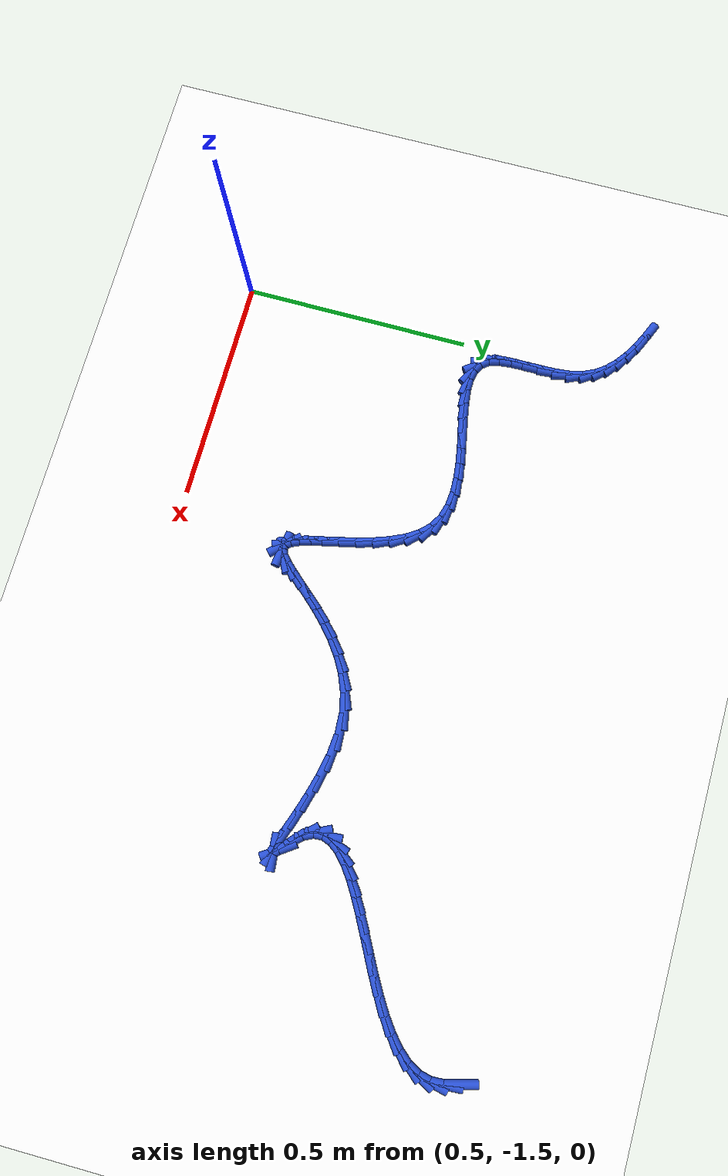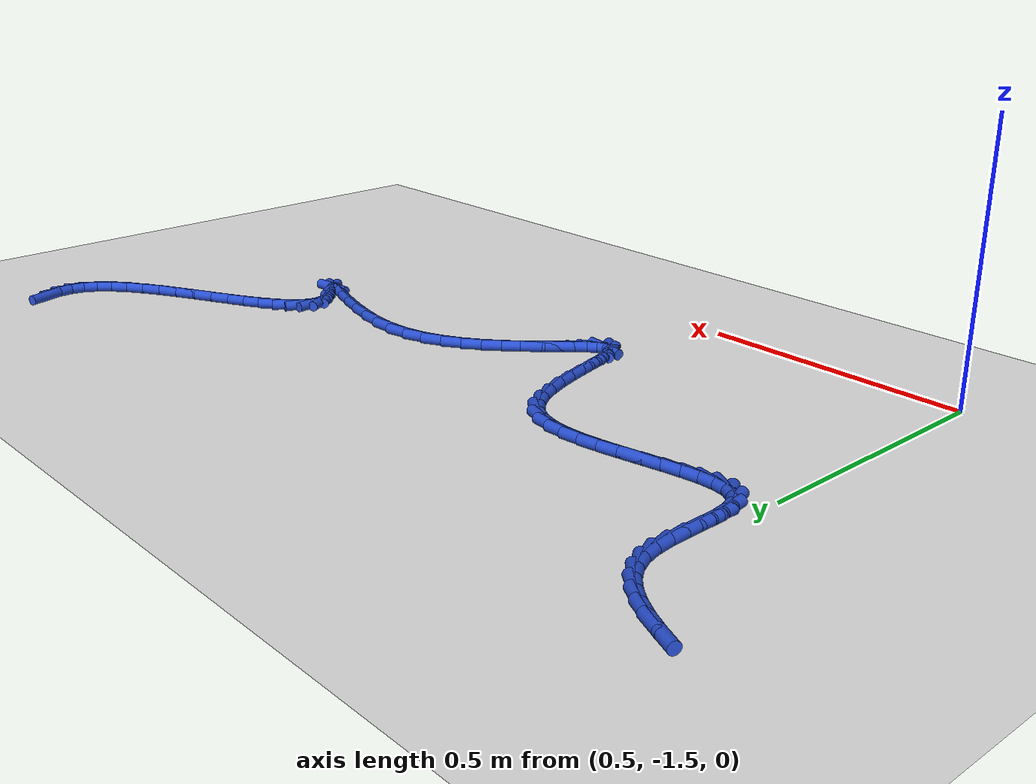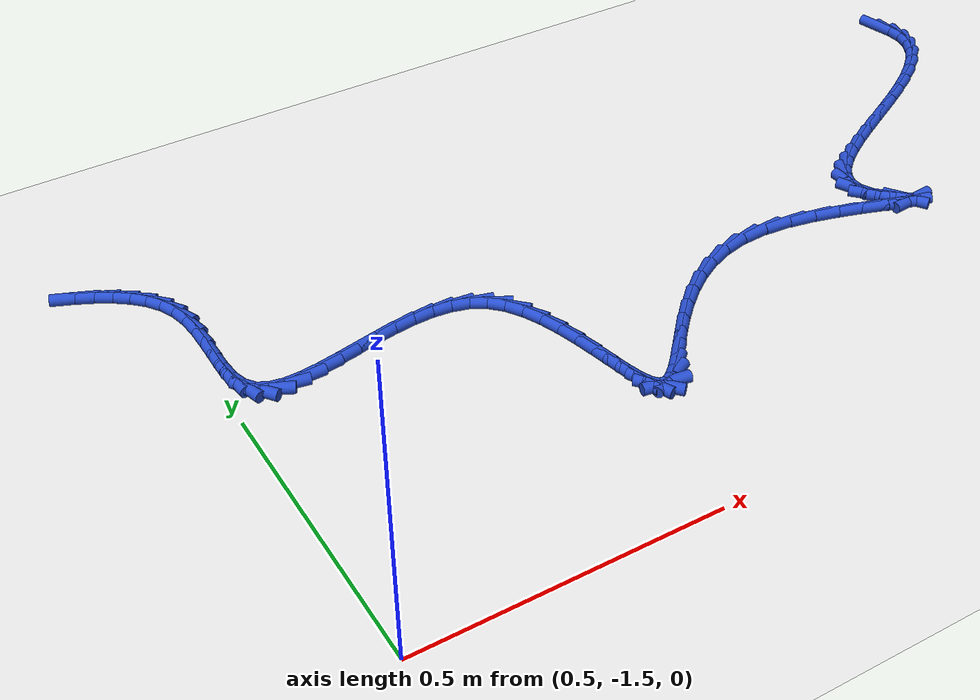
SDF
<sdf version="1.6">
 <world name="default">
  <model name="ground_plane">
   <static>1</static>
   <link name="link">
    <collision name="collision">
     <geometry><plane><normal>0 0 1</normal><size>100 100</size></plane></geometry>
     <surface><friction><ode><mu>100</mu><mu2>50</mu2></ode></friction></surface>
    </collision>
    <visual name="visual">
     <cast_shadows>0</cast_shadows>
     <geometry><plane><normal>0 0 1</normal><size>100 100</size></plane></geometry>
     <material>
      <script><uri>file://media/materials/scripts/gazebo.material</uri><name>Gazebo/WhiteGlow</name></script>
     </material>
    </visual>
   </link>
  </model>
  <model name="line">
   <link name="link_141">
    <pose>2.0365202075726283 -0.6101568703256987 0.01 0 1.57 -1.3154971085269964</pose>
    <collision name="collision">
     <geometry><cylinder><radius>0.01</radius><length>0.08</length></cylinder></geometry>
    </collision>
    <visual name="visual">
     <material>
      <script><name>Gazebo/Blue</name><uri>file://media/materials/scripts/gazebo.material</uri></script>
     </material>
     <geometry><cylinder><radius>0.01</radius><length>0.08</length></cylinder></geometry>
    </visual>
   </link>
   <link name="link_142">
    <pose>2.0439442039422966 -0.6386019169378478 0.01 0 1.57 -1.5188441760817044</pose>
    <collision name="collision">
     <geometry><cylinder><radius>0.01</radius><length>0.08</length></cylinder></geometry>
    </collision>
    <visual name="visual">
     <material>
      <script><name>Gazebo/Blue</name><uri>file://media/materials/scripts/gazebo.material</uri></script>
     </material>
     <geometry><cylinder><radius>0.01</radius><length>0.08</length></cylinder></geometry>
    </visual>
   </link>
   <link name="link_143">
    <pose>2.0453712794253223 -0.6660462349839753 0.01 0 1.57 1.334850323509585</pose>
    <collision name="collision">
     <geometry><cylinder><radius>0.01</radius><length>0.08</length></cylinder></geometry>
    </collision>
    <visual name="visual">
     <material>
      <script><name>Gazebo/Blue</name><uri>file://media/materials/scripts/gazebo.material</uri></script>
     </material>
     <geometry><cylinder><radius>0.01</radius><length>0.08</length></cylinder></geometry>
    </visual>
   </link>
   <link name="link_144">
    <pose>2.039074334436178 -0.6922372173238028 0.01 0 1.57 1.0646054556477154</pose>
    <collision name="collision">
     <geometry><cylinder><radius>0.01</radius><length>0.08</length></cylinder></geometry>
    </collision>
    <visual name="visual">
     <material>
      <script><name>Gazebo/Blue</name><uri>file://media/materials/scripts/gazebo.material</uri></script>
     </material>
     <geometry><cylinder><radius>0.01</radius><length>0.08</length></cylinder></geometry>
    </visual>
   </link>
   <link name="link_145">
    <pose>2.0252477083852085 -0.7171784412068036 0.01 0 1.57 0.8649744407405805</pose>
    <collision name="collision">
     <geometry><cylinder><radius>0.01</radius><length>0.08</length></cylinder></geometry>
    </collision>
    <visual name="visual">
     <material>
      <script><name>Gazebo/Blue</name><uri>file://media/materials/scripts/gazebo.material</uri></script>
     </material>
     <geometry><cylinder><radius>0.01</radius><length>0.08</length></cylinder></geometry>
    </visual>
   </link>
   <link name="link_146">
    <pose>2.004954001127656 -0.7409892485633514 0.01 0 1.57 0.7257990614847771</pose>
    <collision name="collision">
     <geometry><cylinder><radius>0.01</radius><length>0.08</length></cylinder></geometry>
    </collision>
    <visual name="visual">
     <material>
      <script><name>Gazebo/Blue</name><uri>file://media/materials/scripts/gazebo.material</uri></script>
     </material>
     <geometry><cylinder><radius>0.01</radius><length>0.08</length></cylinder></geometry>
    </visual>
   </link>
   <link name="link_147">
    <pose>1.979260061808725 -0.7637895478792787 0.01 0 1.57 0.6303551331826963</pose>
    <collision name="collision">
     <geometry><cylinder><radius>0.01</radius><length>0.08</length></cylinder></geometry>
    </collision>
    <visual name="visual">
     <material>
      <script><name>Gazebo/Blue</name><uri>file://media/materials/scripts/gazebo.material</uri></script>
     </material>
     <geometry><cylinder><radius>0.01</radius><length>0.08</length></cylinder></geometry>
    </visual>
   </link>
   <link name="link_148">
    <pose>1.949232739573619 -0.7856992476404181 0.01 0 1.57 0.5657025924353811</pose>
    <collision name="collision">
     <geometry><cylinder><radius>0.01</radius><length>0.08</length></cylinder></geometry>
    </collision>
    <visual name="visual">
     <material>
      <script><name>Gazebo/Blue</name><uri>file://media/materials/scripts/gazebo.material</uri></script>
     </material>
     <geometry><cylinder><radius>0.01</radius><length>0.08</length></cylinder></geometry>
    </visual>
   </link>
   <link name="link_149">
    <pose>1.9159388835675413 -0.8068382563326031 0.01 0 1.57 0.5235146901072406</pose>
    <collision name="collision">
     <geometry><cylinder><radius>0.01</radius><length>0.08</length></cylinder></geometry>
    </collision>
    <visual name="visual">
     <material>
      <script><name>Gazebo/Blue</name><uri>file://media/materials/scripts/gazebo.material</uri></script>
     </material>
     <geometry><cylinder><radius>0.01</radius><length>0.08</length></cylinder></geometry>
    </visual>
   </link>
   <link name="link_150">
    <pose>1.8804453429356947 -0.827326482441666 0.01 0 1.57 0.49891164776198965</pose>
    <collision name="collision">
     <geometry><cylinder><radius>0.01</radius><length>0.08</length></cylinder></geometry>
    </collision>
    <visual name="visual">
     <material>
      <script><name>Gazebo/Blue</name><uri>file://media/materials/scripts/gazebo.material</uri></script>
     </material>
     <geometry><cylinder><radius>0.01</radius><length>0.08</length></cylinder></geometry>
    </visual>
   </link>
   <link name="link_151">
    <pose>1.843818966823284 -0.8472838344534401 0.01 0 1.57 0.48947186409399607</pose>
    <collision name="collision">
     <geometry><cylinder><radius>0.01</radius><length>0.08</length></cylinder></geometry>
    </collision>
    <visual name="visual">
     <material>
      <script><name>Gazebo/Blue</name><uri>file://media/materials/scripts/gazebo.material</uri></script>
     </material>
     <geometry><cylinder><radius>0.01</radius><length>0.08</length></cylinder></geometry>
    </visual>
   </link>
   <link name="link_152">
    <pose>1.807126604375512 -0.8668302208537584 0.01 0 1.57 0.4947409707133204</pose>
    <collision name="collision">
     <geometry><cylinder><radius>0.01</radius><length>0.08</length></cylinder></geometry>
    </collision>
    <visual name="visual">
     <material>
      <script><name>Gazebo/Blue</name><uri>file://media/materials/scripts/gazebo.material</uri></script>
     </material>
     <geometry><cylinder><radius>0.01</radius><length>0.08</length></cylinder></geometry>
    </visual>
   </link>
   <link name="link_153">
    <pose>1.7714351047375834 -0.8860855501284539 0.01 0 1.57 0.5162398764177215</pose>
    <collision name="collision">
     <geometry><cylinder><radius>0.01</radius><length>0.08</length></cylinder></geometry>
    </collision>
    <visual name="visual">
     <material>
      <script><name>Gazebo/Blue</name><uri>file://media/materials/scripts/gazebo.material</uri></script>
     </material>
     <geometry><cylinder><radius>0.01</radius><length>0.08</length></cylinder></geometry>
    </visual>
   </link>
   <link name="link_154">
    <pose>1.7378113170547005 -0.9051697307633596 0.01 0 1.57 0.5580607703169488</pose>
    <collision name="collision">
     <geometry><cylinder><radius>0.01</radius><length>0.08</length></cylinder></geometry>
    </collision>
    <visual name="visual">
     <material>
      <script><name>Gazebo/Blue</name><uri>file://media/materials/scripts/gazebo.material</uri></script>
     </material>
     <geometry><cylinder><radius>0.01</radius><length>0.08</length></cylinder></geometry>
    </visual>
   </link>
   <link name="link_155">
    <pose>1.7073220904720678 -0.9242026712443082 0.01 0 1.57 0.6283780905096861</pose>
    <collision name="collision">
     <geometry><cylinder><radius>0.01</radius><length>0.08</length></cylinder></geometry>
    </collision>
    <visual name="visual">
     <material>
      <script><name>Gazebo/Blue</name><uri>file://media/materials/scripts/gazebo.material</uri></script>
     </material>
     <geometry><cylinder><radius>0.01</radius><length>0.08</length></cylinder></geometry>
    </visual>
   </link>
   <link name="link_156">
    <pose>1.6810342741348885 -0.9433042800571332 0.01 0 1.57 0.7425223880639837</pose>
    <collision name="collision">
     <geometry><cylinder><radius>0.01</radius><length>0.08</length></cylinder></geometry>
    </collision>
    <visual name="visual">
     <material>
      <script><name>Gazebo/Blue</name><uri>file://media/materials/scripts/gazebo.material</uri></script>
     </material>
     <geometry><cylinder><radius>0.01</radius><length>0.08</length></cylinder></geometry>
    </visual>
   </link>
   <link name="link_157">
    <pose>1.6600147171883668 -0.962594465687667 0.01 0 1.57 0.9277706781269031</pose>
    <collision name="collision">
     <geometry><cylinder><radius>0.01</radius><length>0.08</length></cylinder></geometry>
    </collision>
    <visual name="visual">
     <material>
      <script><name>Gazebo/Blue</name><uri>file://media/materials/scripts/gazebo.material</uri></script>
     </material>
     <geometry><cylinder><radius>0.01</radius><length>0.08</length></cylinder></geometry>
    </visual>
   </link>
   <link name="link_158">
    <pose>1.6453302687777054 -0.9821931366217429 0.01 0 1.57 1.2220287745851628</pose>
    <collision name="collision">
     <geometry><cylinder><radius>0.01</radius><length>0.08</length></cylinder></geometry>
    </collision>
    <visual name="visual">
     <material>
      <script><name>Gazebo/Blue</name><uri>file://media/materials/scripts/gazebo.material</uri></script>
     </material>
     <geometry><cylinder><radius>0.01</radius><length>0.08</length></cylinder></geometry>
    </visual>
   </link>
   <link name="link_159">
    <pose>1.6380477780481082 -1.002220201345194 0.01 0 1.57 -1.513202985241832</pose>
    <collision name="collision">
     <geometry><cylinder><radius>0.01</radius><length>0.08</length></cylinder></geometry>
    </collision>
    <visual name="visual">
     <material>
      <script><name>Gazebo/Blue</name><uri>file://media/materials/scripts/gazebo.material</uri></script>
     </material>
     <geometry><cylinder><radius>0.01</radius><length>0.08</length></cylinder></geometry>
    </visual>
   </link>
   <link name="link_160">
    <pose>1.6392340941447787 -1.0227955683438528 0.01 0 1.57 -1.1033830963939646</pose>
    <collision name="collision">
     <geometry><cylinder><radius>0.01</radius><length>0.08</length></cylinder></geometry>
    </collision>
    <visual name="visual">
     <material>
      <script><name>Gazebo/Blue</name><uri>file://media/materials/scripts/gazebo.material</uri></script>
     </material>
     <geometry><cylinder><radius>0.01</radius><length>0.08</length></cylinder></geometry>
    </visual>
   </link>
   <link name="link_161">
    <pose>1.6499560662129213 -1.0440391461035528 0.01 0 1.57 -0.8106588205118175</pose>
    <collision name="collision">
     <geometry><cylinder><radius>0.01</radius><length>0.08</length></cylinder></geometry>
    </collision>
    <visual name="visual">
     <material>
      <script><name>Gazebo/Blue</name><uri>file://media/materials/scripts/gazebo.material</uri></script>
     </material>
     <geometry><cylinder><radius>0.01</radius><length>0.08</length></cylinder></geometry>
    </visual>
   </link>
   <link name="link_162">
    <pose>1.6706747706532046 -1.0658319475888849 0.01 0 1.57 -0.7256181644002537</pose>
    <collision name="collision">
     <geometry><cylinder><radius>0.01</radius><length>0.08</length></cylinder></geometry>
    </collision>
    <visual name="visual">
     <material>
      <script><name>Gazebo/Blue</name><uri>file://media/materials/scripts/gazebo.material</uri></script>
     </material>
     <geometry><cylinder><radius>0.01</radius><length>0.08</length></cylinder></geometry>
    </visual>
   </link>
   <link name="link_163">
    <pose>1.69083086515302 -1.0837115554083416 0.01 0 1.57 -0.9590964789829547</pose>
    <collision name="collision">
     <geometry><cylinder><radius>0.01</radius><length>0.08</length></cylinder></geometry>
    </collision>
    <visual name="visual">
     <material>
      <script><name>Gazebo/Blue</name><uri>file://media/materials/scripts/gazebo.material</uri></script>
     </material>
     <geometry><cylinder><radius>0.01</radius><length>0.08</length></cylinder></geometry>
    </visual>
   </link>
   <link name="link_164">
    <pose>1.6969852930305747 -1.092485394822723 0.01 0 1.57 0.09613675140793618</pose>
    <collision name="collision">
     <geometry><cylinder><radius>0.01</radius><length>0.08</length></cylinder></geometry>
    </collision>
    <visual name="visual">
     <material>
      <script><name>Gazebo/Blue</name><uri>file://media/materials/scripts/gazebo.material</uri></script>
     </material>
     <geometry><cylinder><radius>0.01</radius><length>0.08</length></cylinder></geometry>
    </visual>
   </link>
   <link name="link_165">
    <pose>1.68942811507707 -1.093214163906986 0.01 0 1.57 -0.2767816808293668</pose>
    <collision name="collision">
     <geometry><cylinder><radius>0.01</radius><length>0.08</length></cylinder></geometry>
    </collision>
    <visual name="visual">
     <material>
      <script><name>Gazebo/Blue</name><uri>file://media/materials/scripts/gazebo.material</uri></script>
     </material>
     <geometry><cylinder><radius>0.01</radius><length>0.08</length></cylinder></geometry>
    </visual>
   </link>
   <link name="link_166">
    <pose>1.6701913782483153 -1.0877495244135522 0.01 0 1.57 -0.32729595699986075</pose>
    <collision name="collision">
     <geometry><cylinder><radius>0.01</radius><length>0.08</length></cylinder></geometry>
    </collision>
    <visual name="visual">
     <material>
      <script><name>Gazebo/Blue</name><uri>file://media/materials/scripts/gazebo.material</uri></script>
     </material>
     <geometry><cylinder><radius>0.01</radius><length>0.08</length></cylinder></geometry>
    </visual>
   </link>
   <link name="link_167">
    <pose>1.6413071295001176 -1.0779431380948439 0.01 0 1.57 -0.3249501699238986</pose>
    <collision name="collision">
     <geometry><cylinder><radius>0.01</radius><length>0.08</length></cylinder></geometry>
    </collision>
    <visual name="visual">
     <material>
      <script><name>Gazebo/Blue</name><uri>file://media/materials/scripts/gazebo.material</uri></script>
     </material>
     <geometry><cylinder><radius>0.01</radius><length>0.08</length></cylinder></geometry>
    </visual>
   </link>
   <link name="link_168">
    <pose>1.6048074157882861 -1.0656466667032827 0.01 0 1.57 -0.29820018483353095</pose>
    <collision name="collision">
     <geometry><cylinder><radius>0.01</radius><length>0.08</length></cylinder></geometry>
    </collision>
    <visual name="visual">
     <material>
      <script><name>Gazebo/Blue</name><uri>file://media/materials/scripts/gazebo.material</uri></script>
     </material>
     <geometry><cylinder><radius>0.01</radius><length>0.08</length></cylinder></geometry>
    </visual>
   </link>
   <link name="link_169">
    <pose>1.5627242840686286 -1.052711771991291 0.01 0 1.57 -0.2514241853783158</pose>
    <collision name="collision">
     <geometry><cylinder><radius>0.01</radius><length>0.08</length></cylinder></geometry>
    </collision>
    <visual name="visual">
     <material>
      <script><name>Gazebo/Blue</name><uri>file://media/materials/scripts/gazebo.material</uri></script>
     </material>
     <geometry><cylinder><radius>0.01</radius><length>0.08</length></cylinder></geometry>
    </visual>
   </link>
   <link name="link_170">
    <pose>1.5170897812969537 -1.0409901157112909 0.01 0 1.57 -0.1815636729861949</pose>
    <collision name="collision">
     <geometry><cylinder><radius>0.01</radius><length>0.08</length></cylinder></geometry>
    </collision>
    <visual name="visual">
     <material>
      <script><name>Gazebo/Blue</name><uri>file://media/materials/scripts/gazebo.material</uri></script>
     </material>
     <geometry><cylinder><radius>0.01</radius><length>0.08</length></cylinder></geometry>
    </visual>
   </link>
   <link name="link_171">
    <pose>1.469935954429069 -1.0323333596157038 0.01 0 1.57 -0.08001971254131335</pose>
    <collision name="collision">
     <geometry><cylinder><radius>0.01</radius><length>0.08</length></cylinder></geometry>
    </collision>
    <visual name="visual">
     <material>
      <script><name>Gazebo/Blue</name><uri>file://media/materials/scripts/gazebo.material</uri></script>
     </material>
     <geometry><cylinder><radius>0.01</radius><length>0.08</length></cylinder></geometry>
    </visual>
   </link>
   <link name="link_172">
    <pose>1.4232948504207834 -1.0285931654569518 0.01 0 1.57 0.06611495928552875</pose>
    <collision name="collision">
     <geometry><cylinder><radius>0.01</radius><length>0.08</length></cylinder></geometry>
    </collision>
    <visual name="visual">
     <material>
      <script><name>Gazebo/Blue</name><uri>file://media/materials/scripts/gazebo.material</uri></script>
     </material>
     <geometry><cylinder><radius>0.01</radius><length>0.08</length></cylinder></geometry>
    </visual>
   </link>
   <link name="link_173">
    <pose>1.3791253040653408 -1.0315176956818468 0.01 0 1.57 0.23330518874298573</pose>
    <collision name="collision">
     <geometry><cylinder><radius>0.01</radius><length>0.08</length></cylinder></geometry>
    </collision>
    <visual name="visual">
     <material>
      <script><name>Gazebo/Blue</name><uri>file://media/materials/scripts/gazebo.material</uri></script>
     </material>
     <geometry><cylinder><radius>0.01</radius><length>0.08</length></cylinder></geometry>
    </visual>
   </link>
   <link name="link_174">
    <pose>1.3382391277229824 -1.0412335785388094 0.01 0 1.57 0.3865921880361873</pose>
    <collision name="collision">
     <geometry><cylinder><radius>0.01</radius><length>0.08</length></cylinder></geometry>
    </collision>
    <visual name="visual">
     <material>
      <script><name>Gazebo/Blue</name><uri>file://media/materials/scripts/gazebo.material</uri></script>
     </material>
     <geometry><cylinder><radius>0.01</radius><length>0.08</length></cylinder></geometry>
    </visual>
   </link>
   <link name="link_175">
    <pose>1.3005380218652145 -1.0565808261565726 0.01 0 1.57 0.5189134378827458</pose>
    <collision name="collision">
     <geometry><cylinder><radius>0.01</radius><length>0.08</length></cylinder></geometry>
    </collision>
    <visual name="visual">
     <material>
      <script><name>Gazebo/Blue</name><uri>file://media/materials/scripts/gazebo.material</uri></script>
     </material>
     <geometry><cylinder><radius>0.01</radius><length>0.08</length></cylinder></geometry>
    </visual>
   </link>
   <link name="link_176">
    <pose>1.2658986533644012 -1.076364060913894 0.01 0 1.57 0.6281480856099433</pose>
    <collision name="collision">
     <geometry><cylinder><radius>0.01</radius><length>0.08</length></cylinder></geometry>
    </collision>
    <visual name="visual">
     <material>
      <script><name>Gazebo/Blue</name><uri>file://media/materials/scripts/gazebo.material</uri></script>
     </material>
     <geometry><cylinder><radius>0.01</radius><length>0.08</length></cylinder></geometry>
    </visual>
   </link>
   <link name="link_177">
    <pose>1.2341976890929036 -1.0993879051895332 0.01 0 1.57 0.714775025030998</pose>
    <collision name="collision">
     <geometry><cylinder><radius>0.01</radius><length>0.08</length></cylinder></geometry>
    </collision>
    <visual name="visual">
     <material>
      <script><name>Gazebo/Blue</name><uri>file://media/materials/scripts/gazebo.material</uri></script>
     </material>
     <geometry><cylinder><radius>0.01</radius><length>0.08</length></cylinder></geometry>
    </visual>
   </link>
   <link name="link_178">
    <pose>1.2053117959230855 -1.1244569813622483 0.01 0 1.57 0.7801169142639108</pose>
    <collision name="collision">
     <geometry><cylinder><radius>0.01</radius><length>0.08</length></cylinder></geometry>
    </collision>
    <visual name="visual">
     <material>
      <script><name>Gazebo/Blue</name><uri>file://media/materials/scripts/gazebo.material</uri></script>
     </material>
     <geometry><cylinder><radius>0.01</radius><length>0.08</length></cylinder></geometry>
    </visual>
   </link>
   <link name="link_179">
    <pose>1.1791176407273094 -1.1503759118107957 0.01 0 1.57 0.8249647004929578</pose>
    <collision name="collision">
     <geometry><cylinder><radius>0.01</radius><length>0.08</length></cylinder></geometry>
    </collision>
    <visual name="visual">
     <material>
      <script><name>Gazebo/Blue</name><uri>file://media/materials/scripts/gazebo.material</uri></script>
     </material>
     <geometry><cylinder><radius>0.01</radius><length>0.08</length></cylinder></geometry>
    </visual>
   </link>
   <link name="link_180">
    <pose>1.1554918903779385 -1.1759493189139347 0.01 0 1.57 0.8483898449364207</pose>
    <collision name="collision">
     <geometry><cylinder><radius>0.01</radius><length>0.08</length></cylinder></geometry>
    </collision>
    <visual name="visual">
     <material>
      <script><name>Gazebo/Blue</name><uri>file://media/materials/scripts/gazebo.material</uri></script>
     </material>
     <geometry><cylinder><radius>0.01</radius><length>0.08</length></cylinder></geometry>
    </visual>
   </link>
   <link name="link_181">
    <pose>1.1343112117473364 -1.1999818250504233 0.01 0 1.57 0.8460205238312934</pose>
    <collision name="collision">
     <geometry><cylinder><radius>0.01</radius><length>0.08</length></cylinder></geometry>
    </collision>
    <visual name="visual">
     <material>
      <script><name>Gazebo/Blue</name><uri>file://media/materials/scripts/gazebo.material</uri></script>
     </material>
     <geometry><cylinder><radius>0.01</radius><length>0.08</length></cylinder></geometry>
    </visual>
   </link>
   <link name="link_182">
    <pose>1.1154522717078645 -1.2212780525990192 0.01 0 1.57 0.8060868958363215</pose>
    <collision name="collision">
     <geometry><cylinder><radius>0.01</radius><length>0.08</length></cylinder></geometry>
    </collision>
    <visual name="visual">
     <material>
      <script><name>Gazebo/Blue</name><uri>file://media/materials/scripts/gazebo.material</uri></script>
     </material>
     <geometry><cylinder><radius>0.01</radius><length>0.08</length></cylinder></geometry>
    </visual>
   </link>
   <link name="link_183">
    <pose>1.098791737131887 -1.2386426239384805 0.01 0 1.57 0.6980866988562023</pose>
    <collision name="collision">
     <geometry><cylinder><radius>0.01</radius><length>0.08</length></cylinder></geometry>
    </collision>
    <visual name="visual">
     <material>
      <script><name>Gazebo/Blue</name><uri>file://media/materials/scripts/gazebo.material</uri></script>
     </material>
     <geometry><cylinder><radius>0.01</radius><length>0.08</length></cylinder></geometry>
    </visual>
   </link>
   <link name="link_184">
    <pose>1.084206274891766 -1.2508801614475653 0.01 0 1.57 0.4378866431995699</pose>
    <collision name="collision">
     <geometry><cylinder><radius>0.01</radius><length>0.08</length></cylinder></geometry>
    </collision>
    <visual name="visual">
     <material>
      <script><name>Gazebo/Blue</name><uri>file://media/materials/scripts/gazebo.material</uri></script>
     </material>
     <geometry><cylinder><radius>0.01</radius><length>0.08</length></cylinder></geometry>
    </visual>
   </link>
   <link name="link_185">
    <pose>1.0715725518598647 -1.2567952875050317 0.01 0 1.57 -0.14724817895022613</pose>
    <collision name="collision">
     <geometry><cylinder><radius>0.01</radius><length>0.08</length></cylinder></geometry>
    </collision>
    <visual name="visual">
     <material>
      <script><name>Gazebo/Blue</name><uri>file://media/materials/scripts/gazebo.material</uri></script>
     </material>
     <geometry><cylinder><radius>0.01</radius><length>0.08</length></cylinder></geometry>
    </visual>
   </link>
   <link name="link_186">
    <pose>1.0607672349085462 -1.2551926244896379 0.01 0 1.57 -0.8377163409879248</pose>
    <collision name="collision">
     <geometry><cylinder><radius>0.01</radius><length>0.08</length></cylinder></geometry>
    </collision>
    <visual name="visual">
     <material>
      <script><name>Gazebo/Blue</name><uri>file://media/materials/scripts/gazebo.material</uri></script>
     </material>
     <geometry><cylinder><radius>0.01</radius><length>0.08</length></cylinder></geometry>
    </visual>
   </link>
   <link name="link_187">
    <pose>1.0516385557198131 -1.2450550493009434 0.01 0 1.57 -1.1599930200410624</pose>
    <collision name="collision">
     <geometry><cylinder><radius>0.01</radius><length>0.08</length></cylinder></geometry>
    </collision>
    <visual name="visual">
     <material>
      <script><name>Gazebo/Blue</name><uri>file://media/materials/scripts/gazebo.material</uri></script>
     </material>
     <geometry><cylinder><radius>0.01</radius><length>0.08</length></cylinder></geometry>
    </visual>
   </link>
   <link name="link_188">
    <pose>1.0437740052809086 -1.2269999701009708 0.01 0 1.57 -1.2864794270924942</pose>
    <collision name="collision">
     <geometry><cylinder><radius>0.01</radius><length>0.08</length></cylinder></geometry>
    </collision>
    <visual name="visual">
     <material>
      <script><name>Gazebo/Blue</name><uri>file://media/materials/scripts/gazebo.material</uri></script>
     </material>
     <geometry><cylinder><radius>0.01</radius><length>0.08</length></cylinder></geometry>
    </visual>
   </link>
   <link name="link_189">
    <pose>1.0366209898193517 -1.2025229583908992 0.01 0 1.57 -1.337161963090513</pose>
    <collision name="collision">
     <geometry><cylinder><radius>0.01</radius><length>0.08</length></cylinder></geometry>
    </collision>
    <visual name="visual">
     <material>
      <script><name>Gazebo/Blue</name><uri>file://media/materials/scripts/gazebo.material</uri></script>
     </material>
     <geometry><cylinder><radius>0.01</radius><length>0.08</length></cylinder></geometry>
    </visual>
   </link>
   <link name="link_190">
    <pose>1.029625572029143 -1.1731280080148034 0.01 0 1.57 -1.3491988723345656</pose>
    <collision name="collision">
     <geometry><cylinder><radius>0.01</radius><length>0.08</length></cylinder></geometry>
    </collision>
    <visual name="visual">
     <material>
      <script><name>Gazebo/Blue</name><uri>file://media/materials/scripts/gazebo.material</uri></script>
     </material>
     <geometry><cylinder><radius>0.01</radius><length>0.08</length></cylinder></geometry>
    </visual>
   </link>
   <link name="link_191">
    <pose>1.0222338146042835 -1.1403191128167594 0.01 0 1.57 -1.3349923307949656</pose>
    <collision name="collision">
     <geometry><cylinder><radius>0.01</radius><length>0.08</length></cylinder></geometry>
    </collision>
    <visual name="visual">
     <material>
      <script><name>Gazebo/Blue</name><uri>file://media/materials/scripts/gazebo.material</uri></script>
     </material>
     <geometry><cylinder><radius>0.01</radius><length>0.08</length></cylinder></geometry>
    </visual>
   </link>
   <link name="link_192">
    <pose>1.0138917802387732 -1.1056002666408418 0.01 0 1.57 -1.2974892297788525</pose>
    <collision name="collision">
     <geometry><cylinder><radius>0.01</radius><length>0.08</length></cylinder></geometry>
    </collision>
    <visual name="visual">
     <material>
      <script><name>Gazebo/Blue</name><uri>file://media/materials/scripts/gazebo.material</uri></script>
     </material>
     <geometry><cylinder><radius>0.01</radius><length>0.08</length></cylinder></geometry>
    </visual>
   </link>
   <link name="link_193">
    <pose>1.004045531626613 -1.0704754633311255 0.01 0 1.57 -1.2342515863513333</pose>
    <collision name="collision">
     <geometry><cylinder><radius>0.01</radius><length>0.08</length></cylinder></geometry>
    </collision>
    <visual name="visual">
     <material>
      <script><name>Gazebo/Blue</name><uri>file://media/materials/scripts/gazebo.material</uri></script>
     </material>
     <geometry><cylinder><radius>0.01</radius><length>0.08</length></cylinder></geometry>
    </visual>
   </link>
   <link name="link_194">
    <pose>0.9921411314618032 -1.0364486967316862 0.01 0 1.57 -1.1380537365277816</pose>
    <collision name="collision">
     <geometry><cylinder><radius>0.01</radius><length>0.08</length></cylinder></geometry>
    </collision>
    <visual name="visual">
     <material>
      <script><name>Gazebo/Blue</name><uri>file://media/materials/scripts/gazebo.material</uri></script>
     </material>
     <geometry><cylinder><radius>0.01</radius><length>0.08</length></cylinder></geometry>
    </visual>
   </link>
   <link name="link_195">
    <pose>0.9776246424383443 -1.0050239606865985 0.01 0 1.57 -0.996344393427405</pose>
    <collision name="collision">
     <geometry><cylinder><radius>0.01</radius><length>0.08</length></cylinder></geometry>
    </collision>
    <visual name="visual">
     <material>
      <script><name>Gazebo/Blue</name><uri>file://media/materials/scripts/gazebo.material</uri></script>
     </material>
     <geometry><cylinder><radius>0.01</radius><length>0.08</length></cylinder></geometry>
    </visual>
   </link>
   <link name="link_196">
    <pose>0.9599421272502381 -0.9777052490399389 0.01 0 1.57 -0.7925009532605019</pose>
    <collision name="collision">
     <geometry><cylinder><radius>0.01</radius><length>0.08</length></cylinder></geometry>
    </collision>
    <visual name="visual">
     <material>
      <script><name>Gazebo/Blue</name><uri>file://media/materials/scripts/gazebo.material</uri></script>
     </material>
     <geometry><cylinder><radius>0.01</radius><length>0.08</length></cylinder></geometry>
    </visual>
   </link>
   <link name="link_197">
    <pose>0.9385396485914832 -0.955996555635781 0.01 0 1.57 -0.5271213506755899</pose>
    <collision name="collision">
     <geometry><cylinder><radius>0.01</radius><length>0.08</length></cylinder></geometry>
    </collision>
    <visual name="visual">
     <material>
      <script><name>Gazebo/Blue</name><uri>file://media/materials/scripts/gazebo.material</uri></script>
     </material>
     <geometry><cylinder><radius>0.01</radius><length>0.08</length></cylinder></geometry>
    </visual>
   </link>
   <link name="link_198">
    <pose>0.9130022722747739 -0.9411323565137719 0.01 0 1.57 -0.2818856975400653</pose>
    <collision name="collision">
     <geometry><cylinder><radius>0.01</radius><length>0.08</length></cylinder></geometry>
    </collision>
    <visual name="visual">
     <material>
      <script><name>Gazebo/Blue</name><uri>file://media/materials/scripts/gazebo.material</uri></script>
     </material>
     <geometry><cylinder><radius>0.01</radius><length>0.08</length></cylinder></geometry>
    </visual>
   </link>
   <link name="link_199">
    <pose>0.8837801804214874 -0.9326697247150854 0.01 0 1.57 -0.09769030096837417</pose>
    <collision name="collision">
     <geometry><cylinder><radius>0.01</radius><length>0.08</length></cylinder></geometry>
    </collision>
    <visual name="visual">
     <material>
      <script><name>Gazebo/Blue</name><uri>file://media/materials/scripts/gazebo.material</uri></script>
     </material>
     <geometry><cylinder><radius>0.01</radius><length>0.08</length></cylinder></geometry>
    </visual>
   </link>
   <link name="link_200">
    <pose>0.8516558342200455 -0.9295214662640833 0.01 0 1.57 0.03145805331114626</pose>
    <collision name="collision">
     <geometry><cylinder><radius>0.01</radius><length>0.08</length></cylinder></geometry>
    </collision>
    <visual name="visual">
     <material>
      <script><name>Gazebo/Blue</name><uri>file://media/materials/scripts/gazebo.material</uri></script>
     </material>
     <geometry><cylinder><radius>0.01</radius><length>0.08</length></cylinder></geometry>
    </visual>
   </link>
   <link name="link_201">
    <pose>0.8174123824023956 -0.9305990540839515 0.01 0 1.57 0.11791523086610088</pose>
    <collision name="collision">
     <geometry><cylinder><radius>0.01</radius><length>0.08</length></cylinder></geometry>
    </collision>
    <visual name="visual">
     <material>
      <script><name>Gazebo/Blue</name><uri>file://media/materials/scripts/gazebo.material</uri></script>
     </material>
     <geometry><cylinder><radius>0.01</radius><length>0.08</length></cylinder></geometry>
    </visual>
   </link>
   <link name="link_202">
    <pose>0.781832973700484 -0.9348139610978736 0.01 0 1.57 0.1716490674855089</pose>
    <collision name="collision">
     <geometry><cylinder><radius>0.01</radius><length>0.08</length></cylinder></geometry>
    </collision>
    <visual name="visual">
     <material>
      <script><name>Gazebo/Blue</name><uri>file://media/materials/scripts/gazebo.material</uri></script>
     </material>
     <geometry><cylinder><radius>0.01</radius><length>0.08</length></cylinder></geometry>
    </visual>
   </link>
   <link name="link_203">
    <pose>0.745700756846258 -0.9410776602290345 0.01 0 1.57 0.19856270267447498</pose>
    <collision name="collision">
     <geometry><cylinder><radius>0.01</radius><length>0.08</length></cylinder></geometry>
    </collision>
    <visual name="visual">
     <material>
      <script><name>Gazebo/Blue</name><uri>file://media/materials/scripts/gazebo.material</uri></script>
     </material>
     <geometry><cylinder><radius>0.01</radius><length>0.08</length></cylinder></geometry>
    </visual>
   </link>
   <link name="link_204">
    <pose>0.7097988805716647 -0.9483016244006187 0.01 0 1.57 0.2006462446348905</pose>
    <collision name="collision">
     <geometry><cylinder><radius>0.01</radius><length>0.08</length></cylinder></geometry>
    </collision>
    <visual name="visual">
     <material>
      <script><name>Gazebo/Blue</name><uri>file://media/materials/scripts/gazebo.material</uri></script>
     </material>
     <geometry><cylinder><radius>0.01</radius><length>0.08</length></cylinder></geometry>
    </visual>
   </link>
   <link name="link_205">
    <pose>0.6749104936086507 -0.9553973265358106 0.01 0 1.57 0.1758205588415721</pose>
    <collision name="collision">
     <geometry><cylinder><radius>0.01</radius><length>0.08</length></cylinder></geometry>
    </collision>
    <visual name="visual">
     <material>
      <script><name>Gazebo/Blue</name><uri>file://media/materials/scripts/gazebo.material</uri></script>
     </material>
     <geometry><cylinder><radius>0.01</radius><length>0.08</length></cylinder></geometry>
    </visual>
   </link>
   <link name="link_206">
    <pose>0.6418187446891633 -0.9612762395577947 0.01 0 1.57 0.11659000759840983</pose>
    <collision name="collision">
     <geometry><cylinder><radius>0.01</radius><length>0.08</length></cylinder></geometry>
    </collision>
    <visual name="visual">
     <material>
      <script><name>Gazebo/Blue</name><uri>file://media/materials/scripts/gazebo.material</uri></script>
     </material>
     <geometry><cylinder><radius>0.01</radius><length>0.08</length></cylinder></geometry>
    </visual>
   </link>
   <link name="link_207">
    <pose>0.6113067825451495 -0.9648498363897556 0.01 0 1.57 0.006620898087576034</pose>
    <collision name="collision">
     <geometry><cylinder><radius>0.01</radius><length>0.08</length></cylinder></geometry>
    </collision>
    <visual name="visual">
     <material>
      <script><name>Gazebo/Blue</name><uri>file://media/materials/scripts/gazebo.material</uri></script>
     </material>
     <geometry><cylinder><radius>0.01</radius><length>0.08</length></cylinder></geometry>
    </visual>
   </link>
   <link name="link_208">
    <pose>0.5841577559085557 -0.9650295899548776 0.01 0 1.57 -0.18490968627495757</pose>
    <collision name="collision">
     <geometry><cylinder><radius>0.01</radius><length>0.08</length></cylinder></geometry>
    </collision>
    <visual name="visual">
     <material>
      <script><name>Gazebo/Blue</name><uri>file://media/materials/scripts/gazebo.material</uri></script>
     </material>
     <geometry><cylinder><radius>0.01</radius><length>0.08</length></cylinder></geometry>
    </visual>
   </link>
   <link name="link_209">
    <pose>0.5611548135113301 -0.960726973176346 0.01 0 1.57 -0.49999155172265675</pose>
    <collision name="collision">
     <geometry><cylinder><radius>0.01</radius><length>0.08</length></cylinder></geometry>
    </collision>
    <visual name="visual">
     <material>
      <script><name>Gazebo/Blue</name><uri>file://media/materials/scripts/gazebo.material</uri></script>
     </material>
     <geometry><cylinder><radius>0.01</radius><length>0.08</length></cylinder></geometry>
    </visual>
   </link>
   <link name="link_210">
    <pose>0.5430811040854181 -0.9508534589773446 0.01 0 1.57 -0.9264508908928696</pose>
    <collision name="collision">
     <geometry><cylinder><radius>0.01</radius><length>0.08</length></cylinder></geometry>
    </collision>
    <visual name="visual">
     <material>
      <script><name>Gazebo/Blue</name><uri>file://media/materials/scripts/gazebo.material</uri></script>
     </material>
     <geometry><cylinder><radius>0.01</radius><length>0.08</length></cylinder></geometry>
    </visual>
   </link>
   <link name="link_211">
    <pose>0.5306872305078727 -0.9343573295366624 0.01 0 1.57 -1.2757337856568287</pose>
    <collision name="collision">
     <geometry><cylinder><radius>0.01</radius><length>0.08</length></cylinder></geometry>
    </collision>
    <visual name="visual">
     <material>
      <script><name>Gazebo/Blue</name><uri>file://media/materials/scripts/gazebo.material</uri></script>
     </material>
     <geometry><cylinder><radius>0.01</radius><length>0.08</length></cylinder></geometry>
    </visual>
   </link>
   <link name="link_212">
    <pose>0.5236947318127765 -0.9113507348789813 0.01 0 1.57 -1.4612236450325773</pose>
    <collision name="collision">
     <geometry><cylinder><radius>0.01</radius><length>0.08</length></cylinder></geometry>
    </collision>
    <visual name="visual">
     <material>
      <script><name>Gazebo/Blue</name><uri>file://media/materials/scripts/gazebo.material</uri></script>
     </material>
     <geometry><cylinder><radius>0.01</radius><length>0.08</length></cylinder></geometry>
    </visual>
   </link>
   <link name="link_213">
    <pose>0.520610884479858 -0.8833191520126691 0.01 0 1.57 -1.5473717226784716</pose>
    <collision name="collision">
     <geometry><cylinder><radius>0.01</radius><length>0.08</length></cylinder></geometry>
    </collision>
    <visual name="visual">
     <material>
      <script><name>Gazebo/Blue</name><uri>file://media/materials/scripts/gazebo.material</uri></script>
     </material>
     <geometry><cylinder><radius>0.01</radius><length>0.08</length></cylinder></geometry>
    </visual>
   </link>
   <link name="link_214">
    <pose>0.5198730611178196 -0.8518271189959447 0.01 0 1.57 1.5694313674032987</pose>
    <collision name="collision">
     <geometry><cylinder><radius>0.01</radius><length>0.08</length></cylinder></geometry>
    </collision>
    <visual name="visual">
     <material>
      <script><name>Gazebo/Blue</name><uri>file://media/materials/scripts/gazebo.material</uri></script>
     </material>
     <geometry><cylinder><radius>0.01</radius><length>0.08</length></cylinder></geometry>
    </visual>
   </link>
   <link name="link_215">
    <pose>0.5199186343353649 -0.8184391738870277 0.01 0 1.57 -1.549041977233417</pose>
    <collision name="collision">
     <geometry><cylinder><radius>0.01</radius><length>0.08</length></cylinder></geometry>
    </collision>
    <visual name="visual">
     <material>
      <script><name>Gazebo/Blue</name><uri>file://media/materials/scripts/gazebo.material</uri></script>
     </material>
     <geometry><cylinder><radius>0.01</radius><length>0.08</length></cylinder></geometry>
    </visual>
   </link>
   <link name="link_216">
    <pose>0.5191849767411965 -0.7847198547441373 0.01 0 1.57 -1.4764060683770872</pose>
    <collision name="collision">
     <geometry><cylinder><radius>0.01</radius><length>0.08</length></cylinder></geometry>
    </collision>
    <visual name="visual">
     <material>
      <script><name>Gazebo/Blue</name><uri>file://media/materials/scripts/gazebo.material</uri></script>
     </material>
     <geometry><cylinder><radius>0.01</radius><length>0.08</length></cylinder></geometry>
    </visual>
   </link>
   <link name="link_217">
    <pose>0.5161094609440176 -0.7522336996254927 0.01 0 1.57 -1.3402388312683315</pose>
    <collision name="collision">
     <geometry><cylinder><radius>0.01</radius><length>0.08</length></cylinder></geometry>
    </collision>
    <visual name="visual">
     <material>
      <script><name>Gazebo/Blue</name><uri>file://media/materials/scripts/gazebo.material</uri></script>
     </material>
     <geometry><cylinder><radius>0.01</radius><length>0.08</length></cylinder></geometry>
    </visual>
   </link>
   <link name="link_218">
    <pose>0.5091386061173847 -0.7225365568236611 0.01 0 1.57 -1.148806483403082</pose>
    <collision name="collision">
     <geometry><cylinder><radius>0.01</radius><length>0.08</length></cylinder></geometry>
    </collision>
    <visual name="visual">
     <material>
      <script><name>Gazebo/Blue</name><uri>file://media/materials/scripts/gazebo.material</uri></script>
     </material>
     <geometry><cylinder><radius>0.01</radius><length>0.08</length></cylinder></geometry>
    </visual>
   </link>
   <link name="link_219">
    <pose>0.4974462019930953 -0.696493325535275 0.01 0 1.57 -0.9570685166620904</pose>
    <collision name="collision">
     <geometry><cylinder><radius>0.01</radius><length>0.08</length></cylinder></geometry>
    </collision>
    <visual name="visual">
     <material>
      <script><name>Gazebo/Blue</name><uri>file://media/materials/scripts/gazebo.material</uri></script>
     </material>
     <geometry><cylinder><radius>0.01</radius><length>0.08</length></cylinder></geometry>
    </visual>
   </link>
   <link name="link_220">
    <pose>0.4814500294263953 -0.6737870414367669 0.01 0 1.57 -0.7864570369210893</pose>
    <collision name="collision">
     <geometry><cylinder><radius>0.01</radius><length>0.08</length></cylinder></geometry>
    </collision>
    <visual name="visual">
     <material>
      <script><name>Gazebo/Blue</name><uri>file://media/materials/scripts/gazebo.material</uri></script>
     </material>
     <geometry><cylinder><radius>0.01</radius><length>0.08</length></cylinder></geometry>
    </visual>
   </link>
   <link name="link_221">
    <pose>0.46168978898235835 -0.6539849094283512 0.01 0 1.57 -0.6460667591332883</pose>
    <collision name="collision">
     <geometry><cylinder><radius>0.01</radius><length>0.08</length></cylinder></geometry>
    </collision>
    <visual name="visual">
     <material>
      <script><name>Gazebo/Blue</name><uri>file://media/materials/scripts/gazebo.material</uri></script>
     </material>
     <geometry><cylinder><radius>0.01</radius><length>0.08</length></cylinder></geometry>
    </visual>
   </link>
   <link name="link_222">
    <pose>0.43870518122605784 -0.636654134410242 0.01 0 1.57 -0.5372812461925378</pose>
    <collision name="collision">
     <geometry><cylinder><radius>0.01</radius><length>0.08</length></cylinder></geometry>
    </collision>
    <visual name="visual">
     <material>
      <script><name>Gazebo/Blue</name><uri>file://media/materials/scripts/gazebo.material</uri></script>
     </material>
     <geometry><cylinder><radius>0.01</radius><length>0.08</length></cylinder></geometry>
    </visual>
   </link>
   <link name="link_223">
    <pose>0.4130359067225676 -0.6213619212826532 0.01 0 1.57 -0.45728040842497153</pose>
    <collision name="collision">
     <geometry><cylinder><radius>0.01</radius><length>0.08</length></cylinder></geometry>
    </collision>
    <visual name="visual">
     <material>
      <script><name>Gazebo/Blue</name><uri>file://media/materials/scripts/gazebo.material</uri></script>
     </material>
     <geometry><cylinder><radius>0.01</radius><length>0.08</length></cylinder></geometry>
    </visual>
   </link>
   <link name="link_224">
    <pose>0.3852216660369613 -0.6076754749457993 0.01 0 1.57 -0.40216382912216686</pose>
    <collision name="collision">
     <geometry><cylinder><radius>0.01</radius><length>0.08</length></cylinder></geometry>
    </collision>
    <visual name="visual">
     <material>
      <script><name>Gazebo/Blue</name><uri>file://media/materials/scripts/gazebo.material</uri></script>
     </material>
     <geometry><cylinder><radius>0.01</radius><length>0.08</length></cylinder></geometry>
    </visual>
   </link>
  </model>
 </world>
</sdf>
